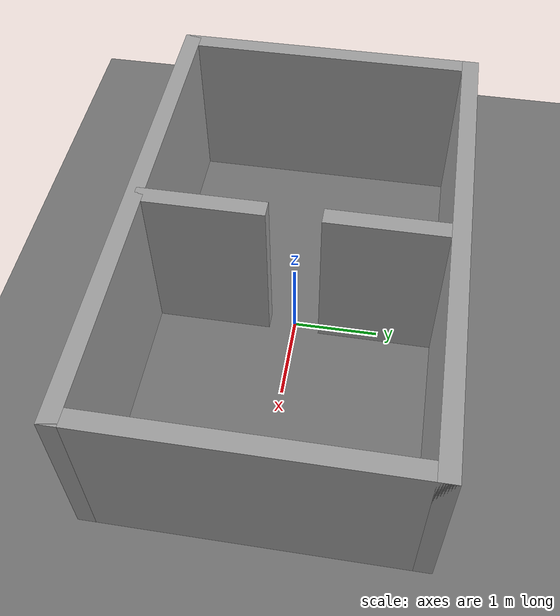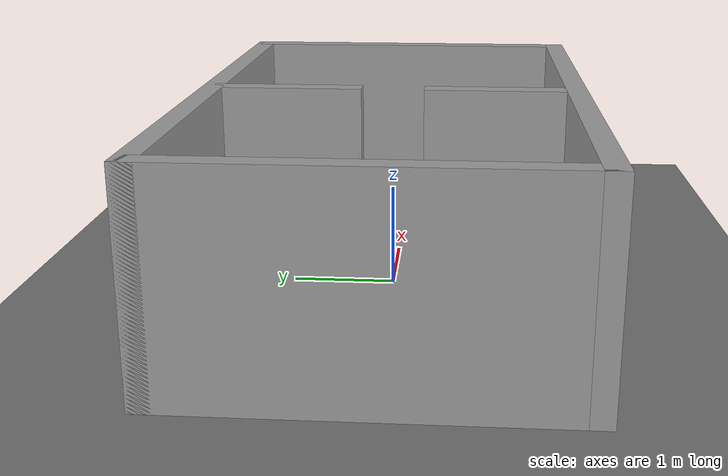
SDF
<?xml version="1.0" ?>
<sdf version="1.9">
  <world name="default">
    <plugin filename="gz-sim-physics-system" name="gz::sim::systems::Physics"/>
    <plugin filename="gz-sim-user-commands-system" name="gz::sim::systems::UserCommands"/>
    <plugin filename="gz-sim-scene-broadcaster-system" name="gz::sim::systems::SceneBroadcaster"/>
    <plugin filename="gz-sim-sensors-system" name="gz::sim::systems::Sensors">
      <render_engine>ogre2</render_engine>
    </plugin>
    <plugin filename="gz-sim-imu-system" name="gz::sim::systems::Imu"/>
    <light name="sun" type="directional">
      <cast_shadows>true</cast_shadows><pose>0 0 10 0 0 0</pose>
      <diffuse>0.8 0.8 0.8 1</diffuse><specular>0.2 0.2 0.2 1</specular>
      <direction>-0.5 0.1 -0.9</direction>
    </light>
    <model name="ground_plane"><static>true</static><link name="ground_link">
      <collision name="ground_collision"><geometry><box><size>40 40 0.01</size></box></geometry></collision>
      <visual name="ground_visual"><geometry><box><size>40 40 0.01</size></box></geometry>
        <material><ambient>0.45 0.45 0.45 1</ambient><diffuse>0.45 0.45 0.45 1</diffuse></material></visual>
    </link></model>
    <model name="structure"><static>true</static><pose>0 0 0 0 0 0</pose><link name="walls">
      <collision name="c_+0.00_-1.75"><pose>0.000 -1.750 1.000 0 0 0</pose><geometry><box><size>5.700 0.200 2.000</size></box></geometry></collision>
      <visual name="v_+0.00_-1.75"><pose>0.000 -1.750 1.000 0 0 0</pose><geometry><box><size>5.700 0.200 2.000</size></box></geometry><material><ambient>0.62 0.62 0.62 1</ambient><diffuse>0.62 0.62 0.62 1</diffuse></material></visual>
      <collision name="c_+0.00_+1.75"><pose>0.000 1.750 1.000 0 0 0</pose><geometry><box><size>5.700 0.200 2.000</size></box></geometry></collision>
      <visual name="v_+0.00_+1.75"><pose>0.000 1.750 1.000 0 0 0</pose><geometry><box><size>5.700 0.200 2.000</size></box></geometry><material><ambient>0.62 0.62 0.62 1</ambient><diffuse>0.62 0.62 0.62 1</diffuse></material></visual>
      <collision name="c_-2.75_+0.00"><pose>-2.750 0.000 1.000 0 0 0</pose><geometry><box><size>0.200 3.700 2.000</size></box></geometry></collision>
      <visual name="v_-2.75_+0.00"><pose>-2.750 0.000 1.000 0 0 0</pose><geometry><box><size>0.200 3.700 2.000</size></box></geometry><material><ambient>0.62 0.62 0.62 1</ambient><diffuse>0.62 0.62 0.62 1</diffuse></material></visual>
      <collision name="c_+2.75_+0.00"><pose>2.750 0.000 1.000 0 0 0</pose><geometry><box><size>0.200 3.700 2.000</size></box></geometry></collision>
      <visual name="v_+2.75_+0.00"><pose>2.750 0.000 1.000 0 0 0</pose><geometry><box><size>0.200 3.700 2.000</size></box></geometry><material><ambient>0.62 0.62 0.62 1</ambient><diffuse>0.62 0.62 0.62 1</diffuse></material></visual>
      <collision name="c_+0.00_-1.02"><pose>0.000 -1.025 1.000 0 0 0</pose><geometry><box><size>0.200 1.450 2.000</size></box></geometry></collision>
      <visual name="v_+0.00_-1.02"><pose>0.000 -1.025 1.000 0 0 0</pose><geometry><box><size>0.200 1.450 2.000</size></box></geometry><material><ambient>0.62 0.62 0.62 1</ambient><diffuse>0.62 0.62 0.62 1</diffuse></material></visual>
      <collision name="c_+0.00_+1.02"><pose>0.000 1.025 1.000 0 0 0</pose><geometry><box><size>0.200 1.450 2.000</size></box></geometry></collision>
      <visual name="v_+0.00_+1.02"><pose>0.000 1.025 1.000 0 0 0</pose><geometry><box><size>0.200 1.450 2.000</size></box></geometry><material><ambient>0.62 0.62 0.62 1</ambient><diffuse>0.62 0.62 0.62 1</diffuse></material></visual>
    </link></model>
  </world>
</sdf>
